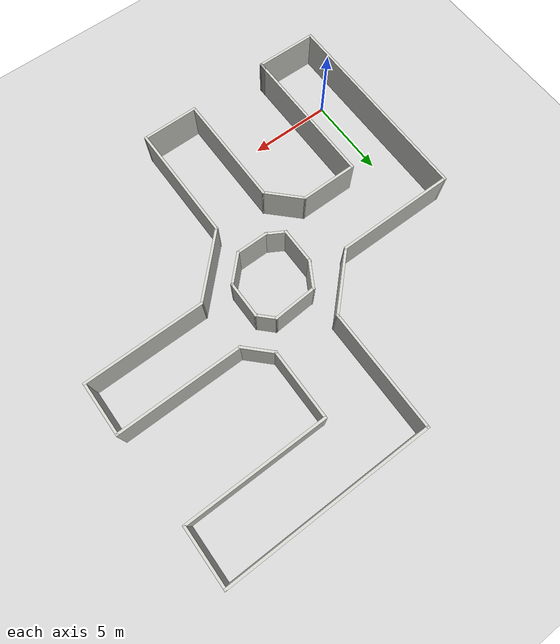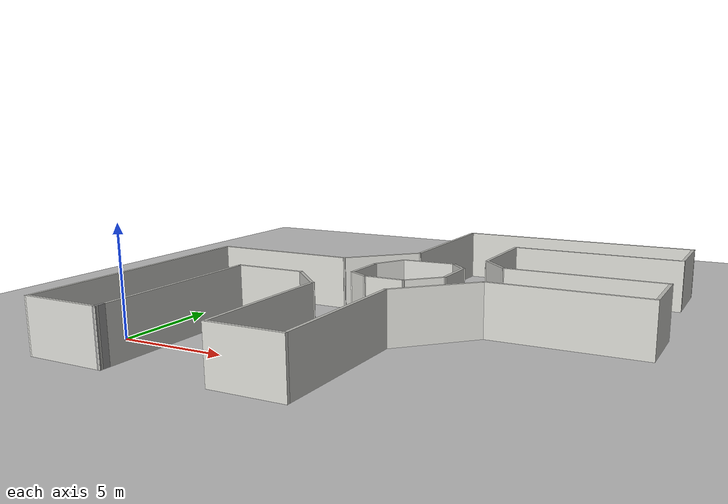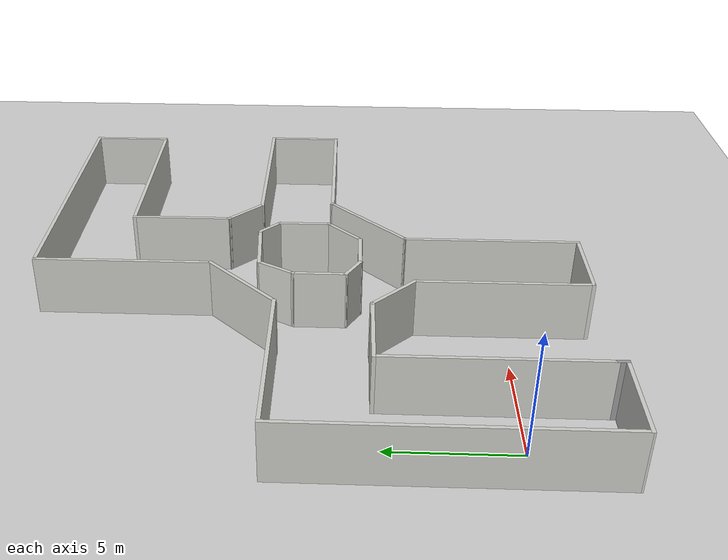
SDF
<sdf version="1.6">
 <world name="default">
  <light name="sun" type="directional">
   <pose>0 0 10 0 -0 0</pose>
   <diffuse>0.8 0.8 0.8 1</diffuse>
   <specular>0.1 0.1 0.1 1</specular>
   <attenuation>
    <range>1000</range>
    <constant>0.9</constant>
    <linear>0.01</linear>
    <quadratic>0.001</quadratic>
   </attenuation>
   <direction>-0.5 0.5 -1</direction>
  </light>
  <model name="ground_plane">
   <static>1</static>
   <link name="link">
    <collision name="collision">
     <geometry><plane><normal>0 0 1</normal><size>100 100</size></plane></geometry>
     <surface><friction><ode><mu>100</mu><mu2>50</mu2></ode></friction></surface>
    </collision>
    <visual name="visual">
     <cast_shadows>0</cast_shadows>
     <geometry><plane><normal>0 0 1</normal><size>100 100</size></plane></geometry>
     <material>
      <script><uri>file://media/materials/scripts/gazebo.material</uri><name>Gazebo/Grey</name></script>
     </material>
    </visual>
   </link>
  </model>
  <gravity>0 0 -9.8</gravity>
  <magnetic_field>6e-06 2.3e-05 -4.2e-05</magnetic_field>
  <atmosphere type="adiabatic"/>
  <physics name="default_physics" default="0" type="ode">
   <max_step_size>0.001</max_step_size>
   <real_time_factor>1</real_time_factor>
   <real_time_update_rate>1000</real_time_update_rate>
  </physics>
  <scene><ambient>0.4 0.4 0.4 1</ambient><background>0.7 0.7 0.7 1</background><shadows>1</shadows></scene>
  <spherical_coordinates>
   <surface_model>EARTH_WGS84</surface_model>
   <latitude_deg>0</latitude_deg>
   <longitude_deg>0</longitude_deg>
   <elevation>0</elevation>
   <heading_deg>0</heading_deg>
  </spherical_coordinates>
  <model name="Untitled">
   <pose>9.53531 7.65302 0 0 -0 0</pose>
   <link name="Wall_62">
    <collision name="Wall_62_Collision">
     <geometry><box><size>12.5 0.15 2.5</size></box></geometry>
     <pose>0 0 1.25 0 -0 0</pose>
    </collision>
    <visual name="Wall_62_Visual">
     <pose>0 0 1.25 0 -0 0</pose>
     <geometry><box><size>12.5 0.15 2.5</size></box></geometry>
     <material>
      <script><uri>file://media/materials/scripts/gazebo.material</uri><name>Gazebo/CeilingTiled</name></script>
      <ambient>1 1 1 1</ambient>
     </material>
    </visual>
    <pose>-11.1148 -4.88568 0 0 -0 1.5708</pose>
   </link>
   <link name="Wall_63">
    <collision name="Wall_63_Collision">
     <geometry><box><size>7.25 0.15 2.5</size></box></geometry>
     <pose>0 0 1.25 0 -0 0</pose>
    </collision>
    <visual name="Wall_63_Visual">
     <pose>0 0 1.25 0 -0 0</pose>
     <geometry><box><size>7.25 0.15 2.5</size></box></geometry>
     <material>
      <script><uri>file://media/materials/scripts/gazebo.material</uri><name>Gazebo/CeilingTiled</name></script>
      <ambient>1 1 1 1</ambient>
     </material>
    </visual>
    <pose>-7.56475 1.28932 0 0 -0 0</pose>
   </link>
   <link name="Wall_64">
    <collision name="Wall_64_Collision">
     <geometry><box><size>4 0.15 2.5</size></box></geometry>
     <pose>0 0 1.25 0 -0 0</pose>
    </collision>
    <visual name="Wall_64_Visual">
     <pose>0 0 1.25 0 -0 0</pose>
     <geometry><box><size>4 0.15 2.5</size></box></geometry>
     <material>
      <script><uri>file://media/materials/scripts/gazebo.material</uri><name>Gazebo/CeilingTiled</name></script>
      <ambient>1 1 1 1</ambient>
     </material>
    </visual>
    <pose>-2.65357 2.6505 0 0 -0 0.785398</pose>
   </link>
   <link name="Wall_65">
    <collision name="Wall_65_Collision">
     <geometry><box><size>7.25 0.15 2.5</size></box></geometry>
     <pose>0 0 1.25 0 -0 0</pose>
    </collision>
    <visual name="Wall_65_Visual">
     <pose>0 0 1.25 0 -0 0</pose>
     <geometry><box><size>7.25 0.15 2.5</size></box></geometry>
     <material>
      <script><uri>file://media/materials/scripts/gazebo.material</uri><name>Gazebo/CeilingTiled</name></script>
      <ambient>1 1 1 1</ambient>
     </material>
    </visual>
    <pose>-1.29239 7.56168 0 0 -0 1.5708</pose>
   </link>
   <link name="Wall_66">
    <collision name="Wall_66_Collision">
     <geometry><box><size>12.25 0.15 2.5</size></box></geometry>
     <pose>0 0 1.25 0 -0 0</pose>
    </collision>
    <visual name="Wall_66_Visual">
     <pose>0 0 1.25 0 -0 0</pose>
     <geometry><box><size>12.25 0.15 2.5</size></box></geometry>
     <material>
      <script><uri>file://media/materials/scripts/gazebo.material</uri><name>Gazebo/CeilingTiled</name></script>
      <ambient>1 1 1 1</ambient>
     </material>
    </visual>
    <pose>4.75761 11.1117 0 0 -0 0</pose>
   </link>
   <link name="Wall_67">
    <collision name="Wall_67_Collision">
     <geometry><box><size>3.5 0.15 2.5</size></box></geometry>
     <pose>0 0 1.25 0 -0 0</pose>
    </collision>
    <visual name="Wall_67_Visual">
     <pose>0 0 1.25 0 -0 0</pose>
     <geometry><box><size>3.5 0.15 2.5</size></box></geometry>
     <material>
      <script><uri>file://media/materials/scripts/gazebo.material</uri><name>Gazebo/CeilingTiled</name></script>
      <ambient>1 1 1 1</ambient>
     </material>
    </visual>
    <pose>10.8076 9.43669 0 0 0 -1.5708</pose>
   </link>
   <link name="Wall_68">
    <collision name="Wall_68_Collision">
     <geometry><box><size>8.5 0.15 2.5</size></box></geometry>
     <pose>0 0 1.25 0 -0 0</pose>
    </collision>
    <visual name="Wall_68_Visual">
     <pose>0 0 1.25 0 -0 0</pose>
     <geometry><box><size>8.5 0.15 2.5</size></box></geometry>
     <material>
      <script><uri>file://media/materials/scripts/gazebo.material</uri><name>Gazebo/CeilingTiled</name></script>
      <ambient>1 1 1 1</ambient>
     </material>
    </visual>
    <pose>6.63261 7.76168 0 0 -0 3.14159</pose>
   </link>
   <link name="Wall_69">
    <collision name="Wall_69_Collision">
     <geometry><box><size>4.25 0.15 2.5</size></box></geometry>
     <pose>0 0 1.25 0 -0 0</pose>
    </collision>
    <visual name="Wall_69_Visual">
     <pose>0 0 1.25 0 -0 0</pose>
     <geometry><box><size>4.25 0.15 2.5</size></box></geometry>
     <material>
      <script><uri>file://media/materials/scripts/gazebo.material</uri><name>Gazebo/CeilingTiled</name></script>
      <ambient>1 1 1 1</ambient>
     </material>
    </visual>
    <pose>2.45761 5.71169 0 0 0 -1.5708</pose>
   </link>
   <link name="Wall_70">
    <collision name="Wall_70_Collision">
     <geometry><box><size>2 0.15 2.5</size></box></geometry>
     <pose>0 0 1.25 0 -0 0</pose>
    </collision>
    <visual name="Wall_70_Visual">
     <pose>0 0 1.25 0 -0 0</pose>
     <geometry><box><size>2 0.15 2.5</size></box></geometry>
     <material>
      <script><uri>file://media/materials/scripts/gazebo.material</uri><name>Gazebo/CeilingTiled</name></script>
      <ambient>1 1 1 1</ambient>
     </material>
    </visual>
    <pose>3.11169 3.00761 0 0 0 -0.785398</pose>
   </link>
   <link name="Wall_71">
    <collision name="Wall_71_Collision">
     <geometry><box><size>7.5 0.15 2.5</size></box></geometry>
     <pose>0 0 1.25 0 -0 0</pose>
    </collision>
    <visual name="Wall_71_Visual">
     <pose>0 0 1.25 0 -0 0</pose>
     <geometry><box><size>7.5 0.15 2.5</size></box></geometry>
     <material>
      <script><uri>file://media/materials/scripts/gazebo.material</uri><name>Gazebo/CeilingTiled</name></script>
      <ambient>1 1 1 1</ambient>
     </material>
    </visual>
    <pose>7.44076 2.35354 0 0 -0 0</pose>
   </link>
   <link name="Wall_72">
    <collision name="Wall_72_Collision">
     <geometry><box><size>3.25 0.15 2.5</size></box></geometry>
     <pose>0 0 1.25 0 -0 0</pose>
    </collision>
    <visual name="Wall_72_Visual">
     <pose>0 0 1.25 0 -0 0</pose>
     <geometry><box><size>3.25 0.15 2.5</size></box></geometry>
     <material>
      <script><uri>file://media/materials/scripts/gazebo.material</uri><name>Gazebo/CeilingTiled</name></script>
      <ambient>1 1 1 1</ambient>
     </material>
    </visual>
    <pose>11.1158 0.803537 0 0 0 -1.5708</pose>
   </link>
   <link name="Wall_73">
    <collision name="Wall_73_Collision">
     <geometry><box><size>7.25 0.15 2.5</size></box></geometry>
     <pose>0 0 1.25 0 -0 0</pose>
    </collision>
    <visual name="Wall_73_Visual">
     <pose>0 0 1.25 0 -0 0</pose>
     <geometry><box><size>7.25 0.15 2.5</size></box></geometry>
     <material>
      <script><uri>file://media/materials/scripts/gazebo.material</uri><name>Gazebo/CeilingTiled</name></script>
      <ambient>1 1 1 1</ambient>
     </material>
    </visual>
    <pose>7.56576 -0.746463 0 0 -0 3.14159</pose>
   </link>
   <link name="Wall_74">
    <collision name="Wall_74_Collision">
     <geometry><box><size>4.5 0.15 2.5</size></box></geometry>
     <pose>0 0 1.25 0 -0 0</pose>
    </collision>
    <visual name="Wall_74_Visual">
     <pose>0 0 1.25 0 -0 0</pose>
     <geometry><box><size>4.5 0.15 2.5</size></box></geometry>
     <material>
      <script><uri>file://media/materials/scripts/gazebo.material</uri><name>Gazebo/CeilingTiled</name></script>
      <ambient>1 1 1 1</ambient>
     </material>
    </visual>
    <pose>2.4778 -2.28442 0 0 0 -2.35619</pose>
   </link>
   <link name="Wall_75">
    <collision name="Wall_75_Collision">
     <geometry><box><size>7.25 0.15 2.5</size></box></geometry>
     <pose>0 0 1.25 0 -0 0</pose>
    </collision>
    <visual name="Wall_75_Visual">
     <pose>0 0 1.25 0 -0 0</pose>
     <geometry><box><size>7.25 0.15 2.5</size></box></geometry>
     <material>
      <script><uri>file://media/materials/scripts/gazebo.material</uri><name>Gazebo/CeilingTiled</name></script>
      <ambient>1 1 1 1</ambient>
     </material>
    </visual>
    <pose>0.939844 -7.37238 0 0 0 -1.5708</pose>
   </link>
   <link name="Wall_76">
    <collision name="Wall_76_Collision">
     <geometry><box><size>3.5 0.15 2.5</size></box></geometry>
     <pose>0 0 1.25 0 -0 0</pose>
    </collision>
    <visual name="Wall_76_Visual">
     <pose>0 0 1.25 0 -0 0</pose>
     <geometry><box><size>3.5 0.15 2.5</size></box></geometry>
     <material>
      <script><uri>file://media/materials/scripts/gazebo.material</uri><name>Gazebo/CeilingTiled</name></script>
      <ambient>1 1 1 1</ambient>
     </material>
    </visual>
    <pose>-0.735156 -10.9224 0 0 -0 3.14159</pose>
   </link>
   <link name="Wall_77">
    <collision name="Wall_77_Collision">
     <geometry><box><size>7 0.15 2.5</size></box></geometry>
     <pose>0 0 1.25 0 -0 0</pose>
    </collision>
    <visual name="Wall_77_Visual">
     <pose>0 0 1.25 0 -0 0</pose>
     <geometry><box><size>7 0.15 2.5</size></box></geometry>
     <material>
      <script><uri>file://media/materials/scripts/gazebo.material</uri><name>Gazebo/CeilingTiled</name></script>
      <ambient>1 1 1 1</ambient>
     </material>
    </visual>
    <pose>-2.41016 -7.49738 0 0 -0 1.5708</pose>
   </link>
   <link name="Wall_78">
    <collision name="Wall_78_Collision">
     <geometry><box><size>2.5 0.15 2.5</size></box></geometry>
     <pose>0 0 1.25 0 -0 0</pose>
    </collision>
    <visual name="Wall_78_Visual">
     <pose>0 0 1.25 0 -0 0</pose>
     <geometry><box><size>2.5 0.15 2.5</size></box></geometry>
     <material>
      <script><uri>file://media/materials/scripts/gazebo.material</uri><name>Gazebo/CeilingTiled</name></script>
      <ambient>1 1 1 1</ambient>
     </material>
    </visual>
    <pose>-3.24101 -3.24153 0 0 -0 2.35619</pose>
   </link>
   <link name="Wall_79">
    <collision name="Wall_79_Collision">
     <geometry><box><size>3.5 0.15 2.5</size></box></geometry>
     <pose>0 0 1.25 0 -0 0</pose>
    </collision>
    <visual name="Wall_79_Visual">
     <pose>0 0 1.25 0 -0 0</pose>
     <geometry><box><size>3.5 0.15 2.5</size></box></geometry>
     <material>
      <script><uri>file://media/materials/scripts/gazebo.material</uri><name>Gazebo/CeilingTiled</name></script>
      <ambient>1 1 1 1</ambient>
     </material>
    </visual>
    <pose>-5.74686 -2.41068 0 0 -0 3.14159</pose>
   </link>
   <link name="Wall_80">
    <collision name="Wall_80_Collision">
     <geometry><box><size>8.5 0.15 2.5</size></box></geometry>
     <pose>0 0 1.25 0 -0 0</pose>
    </collision>
    <visual name="Wall_80_Visual">
     <pose>0 0 1.25 0 -0 0</pose>
     <geometry><box><size>8.5 0.15 2.5</size></box></geometry>
     <material>
      <script><uri>file://media/materials/scripts/gazebo.material</uri><name>Gazebo/CeilingTiled</name></script>
      <ambient>1 1 1 1</ambient>
     </material>
    </visual>
    <pose>-7.42186 -6.58568 0 0 0 -1.5708</pose>
   </link>
   <link name="Wall_81">
    <collision name="Wall_81_Collision">
     <geometry><box><size>0.5 0.15 2.5</size></box></geometry>
     <pose>0 0 1.25 0 -0 0</pose>
    </collision>
    <visual name="Wall_81_Visual">
     <pose>0 0 1.25 0 -0 0</pose>
     <geometry><box><size>0.5 0.15 2.5</size></box></geometry>
     <material>
      <script><uri>file://media/materials/scripts/gazebo.material</uri><name>Gazebo/Grey</name></script>
      <ambient>1 1 1 1</ambient>
     </material>
    </visual>
    <pose>-7.42186 -10.9357 0 0 0 -1.5708</pose>
   </link>
   <link name="Wall_82">
    <collision name="Wall_82_Collision">
     <geometry><box><size>3.84323 0.15 2.5</size></box></geometry>
     <pose>0 0 1.25 0 -0 0</pose>
    </collision>
    <visual name="Wall_82_Visual">
     <pose>0 0 1.25 0 -0 0</pose>
     <geometry><box><size>3.84323 0.15 2.5</size></box></geometry>
     <material>
      <script><uri>file://media/materials/scripts/gazebo.material</uri><name>Gazebo/CeilingTiled</name></script>
      <ambient>1 1 1 1</ambient>
     </material>
    </visual>
    <pose>-9.2683 -11.0857 0 0 -0 3.12805</pose>
   </link>
   <link name="Wall_84">
    <collision name="Wall_84_Collision">
     <geometry><box><size>1.25 0.15 2.5</size></box></geometry>
     <pose>0 0 1.25 0 -0 0</pose>
    </collision>
    <visual name="Wall_84_Visual">
     <pose>0 0 1.25 0 -0 0</pose>
     <geometry><box><size>1.25 0.15 2.5</size></box></geometry>
     <material>
      <script><uri>file://media/materials/scripts/gazebo.material</uri><name>Gazebo/CeilingTiled</name></script>
      <ambient>1 1 1 1</ambient>
     </material>
    </visual>
    <pose>1.73628 1.84176 0 0 0 -0.785398</pose>
   </link>
   <link name="Wall_85">
    <collision name="Wall_85_Collision">
     <geometry><box><size>2.25 0.15 2.5</size></box></geometry>
     <pose>0 0 1.25 0 -0 0</pose>
    </collision>
    <visual name="Wall_85_Visual">
     <pose>0 0 1.25 0 -0 0</pose>
     <geometry><box><size>2.25 0.15 2.5</size></box></geometry>
     <material>
      <script><uri>file://media/materials/scripts/gazebo.material</uri><name>Gazebo/CeilingTiled</name></script>
      <ambient>1 1 1 1</ambient>
     </material>
    </visual>
    <pose>2.12519 0.402853 0 0 0 -1.5708</pose>
   </link>
   <link name="Wall_86">
    <collision name="Wall_86_Collision">
     <geometry><box><size>2 0.15 2.5</size></box></geometry>
     <pose>0 0 1.25 0 -0 0</pose>
    </collision>
    <visual name="Wall_86_Visual">
     <pose>0 0 1.25 0 -0 0</pose>
     <geometry><box><size>2 0.15 2.5</size></box></geometry>
     <material>
      <script><uri>file://media/materials/scripts/gazebo.material</uri><name>Gazebo/CeilingTiled</name></script>
      <ambient>1 1 1 1</ambient>
     </material>
    </visual>
    <pose>1.47111 -1.30122 0 0 0 -2.35619</pose>
   </link>
   <link name="Wall_87">
    <collision name="Wall_87_Collision">
     <geometry><box><size>2 0.15 2.5</size></box></geometry>
     <pose>0 0 1.25 0 -0 0</pose>
    </collision>
    <visual name="Wall_87_Visual">
     <pose>0 0 1.25 0 -0 0</pose>
     <geometry><box><size>2 0.15 2.5</size></box></geometry>
     <material>
      <script><uri>file://media/materials/scripts/gazebo.material</uri><name>Gazebo/CeilingTiled</name></script>
      <ambient>1 1 1 1</ambient>
     </material>
    </visual>
    <pose>-0.107961 -1.95529 0 0 -0 3.14159</pose>
   </link>
   <link name="Wall_88">
    <collision name="Wall_88_Collision">
     <geometry><box><size>1.25 0.15 2.5</size></box></geometry>
     <pose>0 0 1.25 0 -0 0</pose>
    </collision>
    <visual name="Wall_88_Visual">
     <pose>0 0 1.25 0 -0 0</pose>
     <geometry><box><size>1.25 0.15 2.5</size></box></geometry>
     <material>
      <script><uri>file://media/materials/scripts/gazebo.material</uri><name>Gazebo/CeilingTiled</name></script>
      <ambient>1 1 1 1</ambient>
     </material>
    </visual>
    <pose>-1.50927 -1.68029 0 0 -0 2.61799</pose>
   </link>
   <link name="Wall_89">
    <collision name="Wall_89_Collision">
     <geometry><box><size>2.25 0.15 2.5</size></box></geometry>
     <pose>0 0 1.25 0 -0 0</pose>
    </collision>
    <visual name="Wall_89_Visual">
     <pose>0 0 1.25 0 -0 0</pose>
     <geometry><box><size>2.25 0.15 2.5</size></box></geometry>
     <material>
      <script><uri>file://media/materials/scripts/gazebo.material</uri><name>Gazebo/CeilingTiled</name></script>
      <ambient>1 1 1 1</ambient>
     </material>
    </visual>
    <pose>-1.98559 -0.355294 0 0 -0 1.5708</pose>
   </link>
   <link name="Wall_90">
    <collision name="Wall_90_Collision">
     <geometry><box><size>1.75 0.15 2.5</size></box></geometry>
     <pose>0 0 1.25 0 -0 0</pose>
    </collision>
    <visual name="Wall_90_Visual">
     <pose>0 0 1.25 0 -0 0</pose>
     <geometry><box><size>1.75 0.15 2.5</size></box></geometry>
     <material>
      <script><uri>file://media/materials/scripts/gazebo.material</uri><name>Gazebo/CeilingTiled</name></script>
      <ambient>1 1 1 1</ambient>
     </material>
    </visual>
    <pose>-1.58559 1.38753 0 0 -0 1.0472</pose>
   </link>
   <link name="Wall_91">
    <collision name="Wall_91_Collision">
     <geometry><box><size>2.68742 0.15 2.5</size></box></geometry>
     <pose>0 0 1.25 0 -0 0</pose>
    </collision>
    <visual name="Wall_91_Visual">
     <pose>0 0 1.25 0 -0 0</pose>
     <geometry><box><size>2.68742 0.15 2.5</size></box></geometry>
     <material>
      <script><uri>file://media/materials/scripts/gazebo.material</uri><name>Gazebo/CeilingTiled</name></script>
      <ambient>1 1 1 1</ambient>
     </material>
    </visual>
    <pose>0.08089 2.15551 0 0 -0 0.059278</pose>
   </link>
   <static>1</static>
  </model>
 </world>
</sdf>
